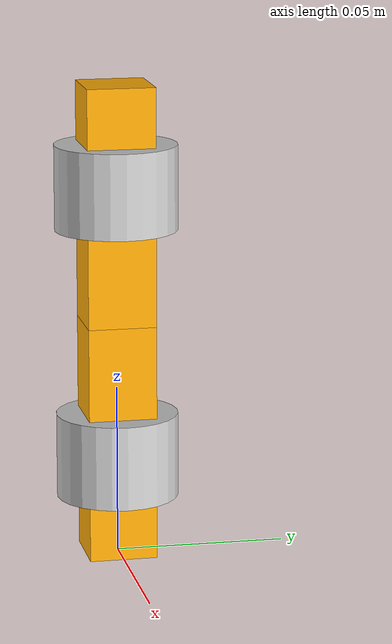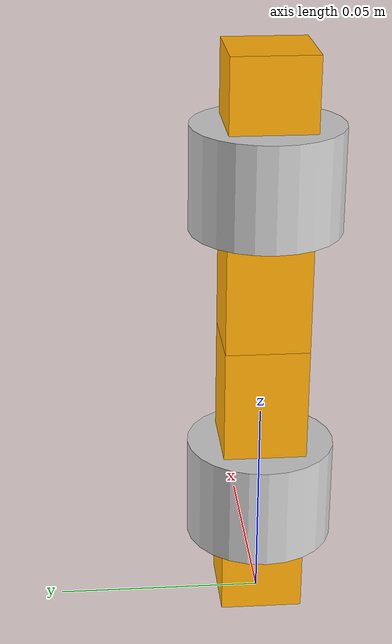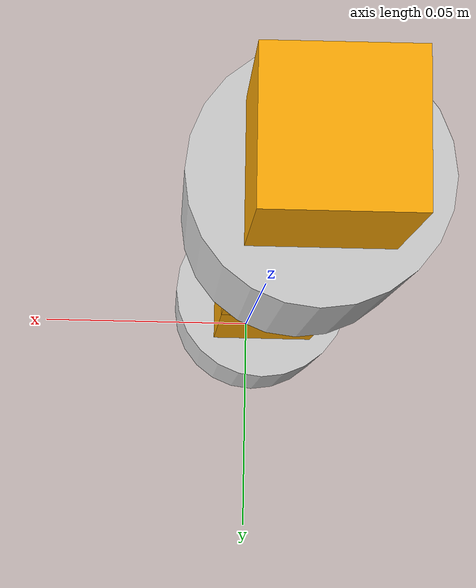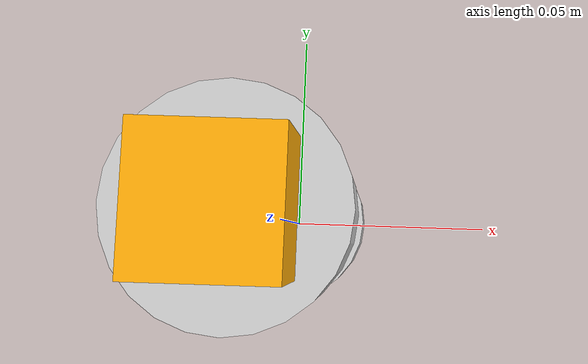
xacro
<?xml version="1.0"?>
<robot name="arm" xmlns:xacro="http://www.ros.org/wiki/xacro">

  <xacro:property name="PI" value="3.14159265359"/>

  <!-- Joints Control in Gazebo -->
  <gazebo>
    <plugin name="gazebo_ros_control" filename="libgazebo_ros_control.so"/>
  </gazebo>

  <!-- Geometrical properties -->
  <xacro:property name="link_side" value="0.02"/>
  <xacro:property name="joint_radius" value="0.018"/>
  <xacro:property name="joint_length" value="0.025"/>
  <xacro:property name="toe_length" value="0.03"/>
  <xacro:property name="foot_length" value="0.04"/>
  <xacro:property name="leg_length" value="0.04"/>
  <xacro:property name="arm_length" value="0.30"/>
  <xacro:property name="hand_length" value="0.04"/>
  <xacro:property name="finger_length" value="0.03"/>

  <!-- Materials -->
  <material name="orange">
    <color rgba="1.00 0.67 0.02 1.00"/>
  </material>

  <material name="gray">
    <color rgba="0.80 0.80 0.80 1.00"/>
  </material>

  <!-- Generates a box visual/collision/inertial -->
  <xacro:macro name="prism_vci" params="side length mass:=1 *origin">

    <xacro:macro name="prism_geometry">
      <xacro:insert_block name="origin"/>
      <geometry>
        <box size="${side} ${side} ${length}"/>
      </geometry>
    </xacro:macro>

    <visual>
      <xacro:prism_geometry/>
      <material name="orange"/>
    </visual>

    <collision>
      <xacro:prism_geometry/>
    </collision>

    <inertial>
      <xacro:insert_block name="origin"/>
      <mass value="${mass}"/>
      <inertia ixx="${(mass/12)*(side*side+length*length)}"
               iyy="${(mass/12)*(side*side+length*length)}"
               izz="${(mass/6)*(side*side)}"
               ixy="0" ixz="0" iyz="0"/>
    </inertial>

  </xacro:macro>

  <!-- Generates a cylinder visual/collision -->
  <xacro:macro name="cylinder_vc" params="radius length *origin">

    <xacro:macro name="cylinder_geometry">
      <xacro:insert_block name="origin"/>
      <geometry>
        <cylinder length="${length}" radius="${radius}"/>
      </geometry>
    </xacro:macro>

    <visual>
      <xacro:cylinder_geometry/>
      <material name="gray"/>
    </visual>

    <collision>
      <xacro:cylinder_geometry/>
    </collision>

  </xacro:macro>

  <!-- Generates child joint of parent -->
  <xacro:macro name="arm_joint" params="child parent dist:=0 axis">

    <xacro:unless value="${child == 'arm'}">
        <joint name="${parent}_${child}_joint" type="revolute">
          <origin xyz="0 0 ${dist}" rpy="0 0 0"/>
          <parent link="${parent}"/>
          <child link="${child}"/>
          <axis xyz="${axis}"/>
          <limit effort="40.0"
                 velocity="1.0"
                 lower="${-PI/2}"
                 upper="${PI/2}"/>
        </joint>
    </xacro:unless>

    <xacro:if value="${child == 'arm'}">
        <joint name="${parent}_${child}_joint" type="prismatic">
          <origin xyz="0 0 ${dist}" rpy="0 0 0"/>
          <parent link="${parent}"/>
          <child link="${child}"/>
          <axis xyz="${axis}"/>
          <limit effort="40.0"
                 velocity="1.0"
                 lower="${0.0}"
                 upper="${0.5}"/>
        </joint>
    </xacro:if>

    <!-- Required for ROS control -->
    <transmission name="${parent}_${child}_transmission">
      <type>transmission_interface/SimpleTransmission</type>
      <joint name="${parent}_${child}_joint">
        <hardwareInterface>hardware_interface/EffortJointInterface</hardwareInterface>
      </joint>
      <actuator name="${parent}_${child}_actuator"/>
    </transmission>

    <link name="${parent}">

      <xacro:prism_vci length="${dist}" side="${link_side}">
        <origin xyz="0 0 ${dist/2}" rpy="0 0 0"/>
      </xacro:prism_vci>

      <xacro:cylinder_vc radius="${joint_radius}" length="${joint_length}">

        <xacro:if value="${axis=='0 0 1'}">
          <origin xyz="0 0 ${dist}" rpy="0 0 0"/>
        </xacro:if>

        <xacro:if value="${axis=='1 0 0'}">
          <origin xyz="0 0 ${dist}" rpy="0 ${PI/2} 0"/>
        </xacro:if>

        <xacro:if value="${axis=='0 1 0'}">
          <origin xyz="0 0 ${dist}" rpy="${PI/2} 0 0"/>
        </xacro:if>

      </xacro:cylinder_vc>

    </link>

    <gazebo reference="${parent}">
      <material>Gazebo/Orange</material>
    </gazebo>

  </xacro:macro>

  <!-- Uncomment for RViz with fake joints -->
  <!-- World frame (for Gazebo) -->
  <!--link name="world"/-->

  <!-- Uncomment for RViz with fake joints -->
  <!-- Arm fixed to world frame  -->

  <!-- Joints Chain -->
  <xacro:arm_joint parent="toe" child="foot" axis="0 0 1" dist="${toe_length}"/>
  <xacro:arm_joint parent="foot" child="leg" axis="1 0 0" dist="${foot_length}"/>
  <xacro:arm_joint parent="leg" child="arm" axis="0 0 1" dist="${leg_length}"/>

  <!-- End effector -->
  <link name="arm">
    <xacro:prism_vci length="${finger_length}" side="${link_side}">
      <origin xyz="0 0 ${finger_length/2}" rpy="0 0 0"/>
    </xacro:prism_vci>
  </link>

  <gazebo reference="arm">
    <material>Gazebo/Red</material>
  </gazebo>

</robot>
